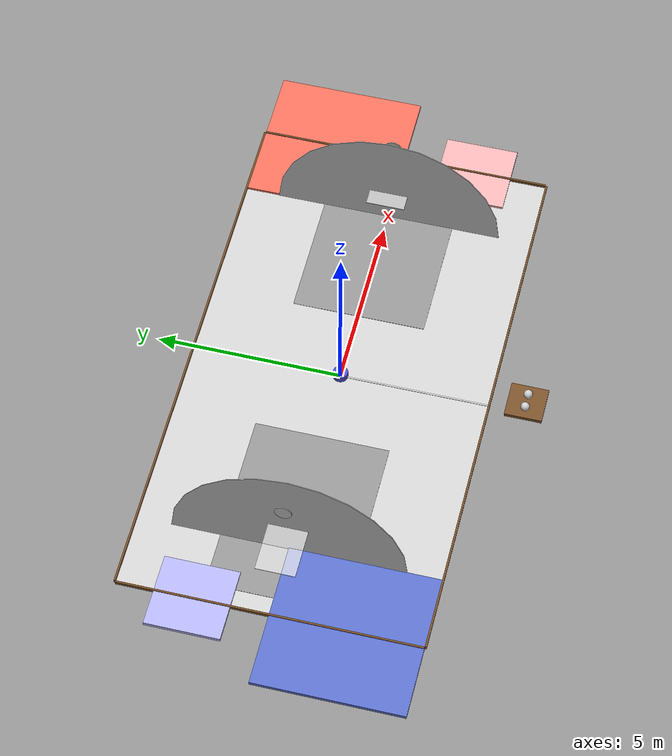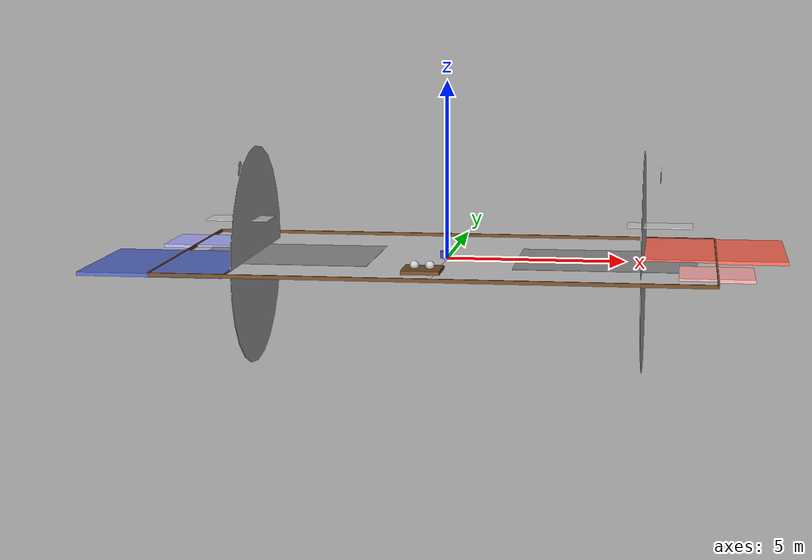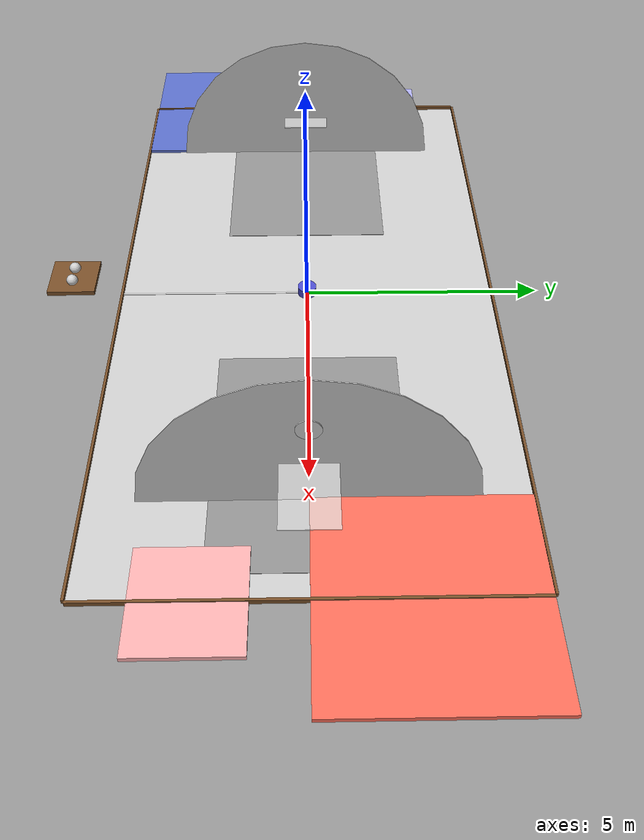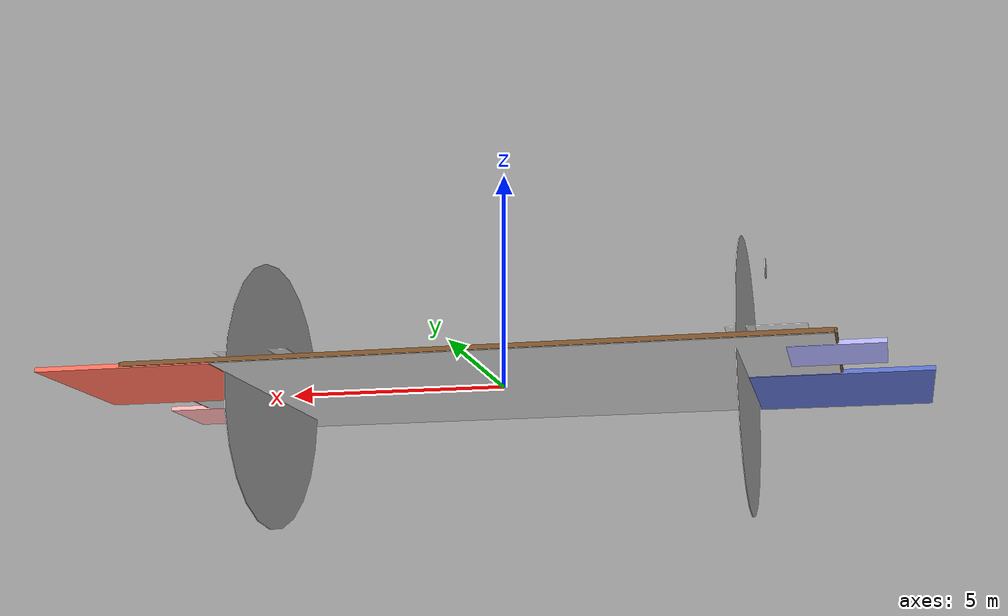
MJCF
<mujoco model="ABU_Robocon_2025_Field">
  <!-- Global Settings -->
  <option timestep="0.015"/>
  <option gravity="0 0 -9.8"/>
  <visual>
  </visual>

  <!-- Materials -->
  <asset>
    <!-- Field Colors from Rulebook -->
    <material name="playing_area" rgba="0.8 0.8 0.8 1"/>
    <material name="red_zone" rgba="1 0.43 0.35 1"/>
    <material name="blue_zone" rgba="0.35 0.43 0.78 1"/>
    <material name="three_point_zone" rgba="0.78 0.78 0.78 1"/>
    <material name="two_point_zone" rgba="0.57 0.57 0.57 1"/>
    <material name="line" rgba="1 1 1 1"/>
    <material name="fence" rgba="0.47 0.31 0.16 1"/>
    <material name="backboard" rgba="0.9 0.9 0.9 0.7"/>
    <material name="hoop" rgba="0.8 0.8 0.8 1"/>
  </asset>

  <!-- World Body -->
  <worldbody>
      <!-- Differential Drive Robot -->
  <body name="robot" pos="0 0 0.1">
    <!-- Base -->
    <geom name="base" type="cylinder" size="0.2 0.1" pos="0 0 0" rgba="0.3 0.3 0.8 1"/>

    <!-- Wheels -->
    <body name="left_wheel" pos="0 0.15 -0.05">
      <geom name="left_wheel_geom" type="cylinder" size="0.05 0.02" euler="0 90 0" rgba="0.1 0.1 0.1 1"/>
      <joint name="left_wheel_joint" type="hinge" axis="0 1 0" pos="0 0 0" limited="false"/>
    </body>

    <body name="right_wheel" pos="0 -0.15 -0.05">
      <geom name="right_wheel_geom" type="cylinder" size="0.05 0.02" euler="0 90 0" rgba="0.1 0.1 0.1 1"/>
      <joint name="right_wheel_joint" type="hinge" axis="0 1 0" pos="0 0 0" limited="false"/>
    </body>

    <!-- Caster (for stability) -->
    <geom name="caster" type="sphere" size="0.03" pos="0.1 0 -0.1" rgba="0.5 0.5 0.5 1"/>
  </body>
    <!-- Lighting -->
    <light directional="true" diffuse="0.8 0.8 0.8" specular="0.2 0.2 0.2"
           pos="0 0 10" dir="-0.5 0.1 -0.9"/>

    <!-- Main Playing Area (15m x 8m) -->
    <body name="playing_area" pos="0 0 0">
      <!-- Main Surface -->
      <geom name="surface" type="box" size="7.5 4 0.01" pos="0 0 0" material="playing_area"/>

      <!-- Center Line -->
      <geom name="center_line" type="box" size="0.02 4 0.015" pos="0 0 0.01" material="line"/>

      <!-- Zones -->
      <geom name="red_three_point" type="cylinder" size="3.1 0.01" pos="5.5 0 0.01" euler="0 90 0" material="three_point_zone"/>
      <geom name="blue_three_point" type="cylinder" size="3.1 0.01" pos="-5.5 0 0.01" euler="0 90 0" material="three_point_zone"/>
      <geom name="red_two_point" type="box" size="2.5 1.8 0.01" pos="4.5 0 0.01" material="two_point_zone"/>
      <geom name="blue_two_point" type="box" size="2.5 1.8 0.01" pos="-4.5 0 0.01" material="two_point_zone"/>

      <!-- Field Boundaries (10cm fence) -->
      <geom name="north_fence" type="box" size="7.5 0.025 0.05" pos="0 4.025 0.05" material="fence"/>
      <geom name="south_fence" type="box" size="7.5 0.025 0.05" pos="0 -4.025 0.05" material="fence"/>
      <geom name="east_fence" type="box" size="0.025 4 0.05" pos="7.525 0 0.05" material="fence"/>
      <geom name="west_fence" type="box" size="0.025 4 0.05" pos="-7.525 0 0.05" material="fence"/>

      <!-- Red Team Basketball Hoop -->
      <body name="red_hoop" pos="5.5 0 0">
        <!-- Backboard (1800mm x 1050mm) -->
        <geom name="red_backboard" type="box" size="0.9 0.525 0.01" pos="0.45 0 1.025" euler="0 0 0" material="backboard"/>
        <!-- Hoop (450mm diameter) -->
        <geom name="red_hoop" type="cylinder" size="0.225 0.01" pos="0.45 0 2.43" euler="0 90 0" material="hoop"/>
      </body>

      <!-- Blue Team Basketball Hoop -->
      <body name="blue_hoop" pos="-5.5 0 0">
        <!-- Backboard (1800mm x 1050mm) -->
        <geom name="blue_backboard" type="box" size="0.9 0.525 0.01" pos="-0.45 0 1.025" euler="0 0 0" material="backboard"/>
        <!-- Hoop (450mm diameter) -->
        <geom name="blue_hoop" type="cylinder" size="0.225 0.01" pos="-0.45 0 2.43" euler="0 90 0" material="hoop"/>
      </body>
    </body>

    <!-- Operating Areas -->
    <body name="operating_areas">
      <!-- Red Team Operating Area -->
      <geom name="red_op_area" type="box" size="2 2 0.05" pos="7.5 2 0.025" material="red_zone"/>
      <!-- Blue Team Operating Area -->
      <geom name="blue_op_area" type="box" size="2 2 0.05" pos="-7.5 -2 0.025" material="blue_zone"/>
      <!-- Spare Mechanism Zones -->
      <geom name="red_spare_zone" type="box" size="1 1 0.05" pos="7.5 -2 0.025" material="red_zone" rgba="1 0.69 0.69 1"/>
      <geom name="blue_spare_zone" type="box" size="1 1 0.05" pos="-7.5 2 0.025" material="blue_zone" rgba="0.69 0.69 1 1"/>
    </body>

    <!-- Ball Rack (Positioned outside operating areas) -->
    <body name="ball_rack" pos="0 -5 0.5">
      <geom name="rack_base" type="box" size="0.5 0.5 0.05" material="fence"/>
      <!-- Sample basketballs (Size 7) -->
      <geom name="ball1" type="sphere" size="0.12" pos="-0.2 0 0.12" material="hoop"/>
      <geom name="ball2" type="sphere" size="0.12" pos="0.2 0 0.12" material="hoop"/>
    </body>

    <!-- Camera View -->
    <camera name="overview" pos="0 -10 5" xyaxes="1 0 0 0 0.5 0.87"/>
  </worldbody>

  <!-- Contact Settings -->
  <contact>
    <exclude body1="red_hoop" body2="blue_hoop"/>
  </contact>

  <!-- Solver Settings -->
  <size njmax="1000" nconmax="500"/>
  <option cone="elliptic" impratio="0.1"/>

  <actuator>
    <velocity name="left_wheel_velocity" joint="left_wheel_joint" kv="10"/>
    <velocity name="right_wheel_velocity" joint="right_wheel_joint" kv="10"/>
  </actuator>

</mujoco>
